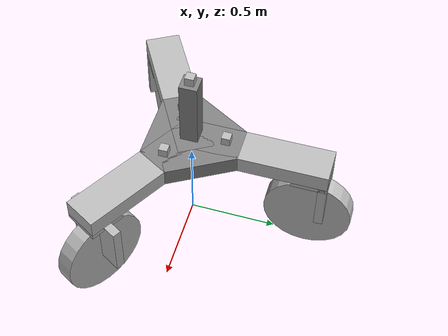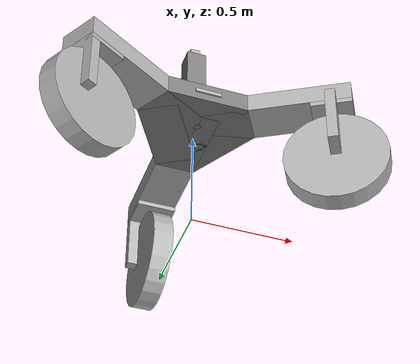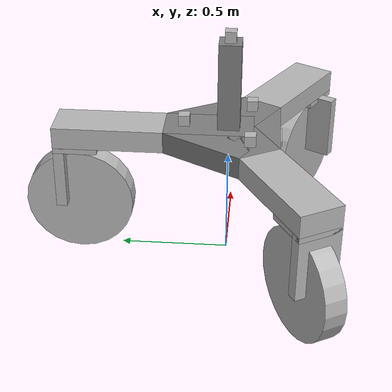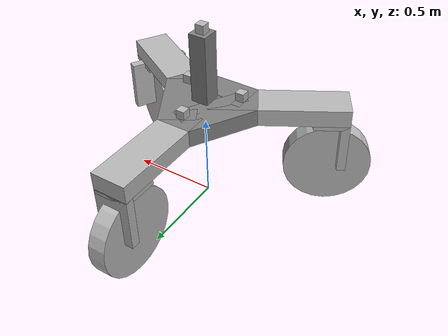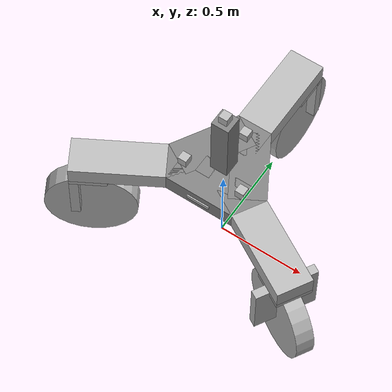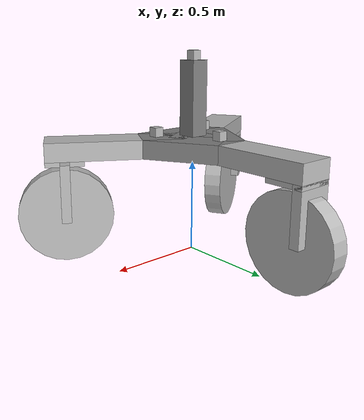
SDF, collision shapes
<?xml version='1.0'?>
<sdf version='1.4'>
  <model name="chimera">
    <plugin name="gps_receiver" filename="libhector_gazebo_ros_gps.so">
      <alwayson>true</alwayson>
      <updaterate>1.0</updaterate>
      <bodyname>base_link</bodyname>
      <topic>/gps/fix</topic>
      <topicName>/gps/fix</topicName>
      <velocitytopicname>/fix_velocity</velocitytopicname>
      <drift>5.0 5.0 5.0</drift>
      <gaussiannoise>0.1 0.1 0.1</gaussiannoise>
      <velocitydrift>0 0 0</velocitydrift>
      <velocitygaussiannoise>0.1 0.1 0.1</velocitygaussiannoise>
      <frameName>world</frameName>
    </plugin>
    <static>false</static>
    <link name = 'chassis'>
      <pose> 0 0 .6 0 0 0 </pose>
      <inertial>
          <inertia>
              <ixx>1e-3</ixx>
              <ixy>0</ixy>
              <ixz>0</ixz>
              <iyy>1e-3</iyy>
              <iyz>0</iyz>
              <izz>1e-3</izz>
          </inertia>
          <mass>0.020</mass>
      </inertial>
      <collision name = 'central-coll'>
        <pose>0 0 .25 0 0 0</pose>
        <geometry>
          <box>
            <size>.1 .1 .4</size>
          </box>
        </geometry>
      </collision>
      <visual name = 'central-vis'>
        <material>
          <ambient>0.5 0.5 0.5 1</ambient>
        </material>
        <pose>0 0 .25 0 0 0</pose>
        <geometry>
          <box>
            <size>.1 .1 .4</size>
          </box>
        </geometry>
      </visual>
      <collision name = 'bow-coll'>
        <pose>0	0.08867529536	0	0	0	1.570796327</pose>
        <geometry>
          <box>
            <size>.4 .2 .1 </size>
          </box>
        </geometry>
      </collision>
      <visual name='bow-vis'>
        <pose>0	0.08867529536	0	0	0	1.570796327</pose>
        <geometry>
          <box>
            <size> .4 .2 .1 </size>
          </box>
        </geometry>
      </visual>
      <collision name = 'port-bow-coll'>
        <pose>-0.11339739	0.06547001365	0	0	0	1.047197551</pose>
        <geometry>
          <box>
            <size>.4 .2 .1 </size>
          </box>
        </geometry>
      </collision>
      <visual name='port-bow-vis'>
        <pose>-0.11339739	0.06547001365	0	0	0	1.047197551</pose>
        <geometry>
          <box>
            <size> .4 .2 .1 </size>
          </box>
        </geometry>
      </visual>
      <collision name = 'port-stern-coll'>
        <pose>-0.07679505847	-0.04433764768	0	0	0	0.5235987756</pose>
        <geometry>
          <box>
            <size>.4 .2 .1 </size>
          </box>
        </geometry>
      </collision>
      <visual name='port-stern-vis'>
        <pose>-0.07679505847	-0.04433764768	0	0	0	0.5235987756</pose>
        <geometry>
          <box>
            <size> .4 .2 .1 </size>
          </box>
        </geometry>
      </visual>
      <collision name = 'stern-coll'>
        <pose>0	-0.1309400273	0	0	0	0</pose>
        <geometry>
          <box>
            <size>.4 .2 .1 </size>
          </box>
        </geometry>
      </collision>
      <visual name='stern-vis'>
        <pose>0	-0.1309400273	0	0	0	0</pose>
        <geometry>
          <box>
            <size> .4 .2 .1 </size>
          </box>
        </geometry>
      </visual>
      <collision name = 'starboard-stern-coll'>
        <pose>0.07679505847	-0.04433764768	0	0	0	2.617993878</pose>
        <geometry>
          <box>
            <size>.4 .2 .1 </size>
          </box>
        </geometry>
      </collision>
      <visual name='starboard-stern-vis'>
        <pose>0.07679505847	-0.04433764768	0	0	0	2.617993878</pose>
        <geometry>
          <box>
            <size> .4 .2 .1 </size>
          </box>
        </geometry>
      </visual>
      <collision name = 'starboard-bow-coll'>
        <pose>0.11339739	0.06547001365	0	0	0	2.094395102</pose>
        <geometry>
          <box>
            <size>.4 .2 .1 </size>
          </box>
        </geometry>
      </collision>
      <visual name='starboard-bow-vis'>
        <pose>0.11339739	0.06547001365	0	0	0	2.094395102</pose>
        <geometry>
          <box>
            <size> .4 .2 .1 </size>
          </box>
        </geometry>
      </visual>
    </link>
    <link name = "imu0-enclosure">
       <pose>0 0 1.075 0 0 0</pose>
       <inertial>
          <inertia>
              <ixx>1e-3</ixx>
              <ixy>0</ixy>
              <ixz>0</ixz>
              <iyy>1e-3</iyy>
              <iyz>0</iyz>
              <izz>1e-3</izz>
          </inertia>
          <mass>0.0003</mass>
       </inertial>
       <collision name = "imu0-coll">
         <geometry>
           <box>
             <size>.05 .05 .05</size>
           </box>
         </geometry>
       </collision>
       <visual name = "imu0-vis">
         <geometry>
           <box>
             <size>.05 .05 .05</size>
           </box>
         </geometry>
       </visual>
      <sensor name="imu_sensor_0" type="imu">
        <pose>0 0 0 0 0 0</pose>
        <always_on>1</always_on>
        <update_rate>100.0</update_rate>
        <visualize>true</visualize>
        <topic>/imu0/data</topic>
        <plugin filename="libgazebo_ros_imu_sensor.so" name="imu0_plugin">
          <topicName>/imu0/data</topicName>
          <bodyName>imu0_link</bodyName>
          <updateRateHZ>100.0</updateRateHZ>
          <gaussianNoise>0.0</gaussianNoise>
          <xyzOffset>0 0 0</xyzOffset>
          <rpyOffset>0 0 0</rpyOffset>
          <frameName>imu0_link</frameName>
        </plugin>
      </sensor>
    </link>
    <link name = "imu1-enclosure">
       <pose>0 0.2 0.675 0 0 0</pose>
       <inertial>
          <inertia>
              <ixx>1e-3</ixx>
              <ixy>0</ixy>
              <ixz>0</ixz>
              <iyy>1e-3</iyy>
              <iyz>0</iyz>
              <izz>1e-3</izz>
          </inertia>
          <mass>0.0003</mass>
       </inertial>
       <collision name = "imu1-coll">
         <geometry>
           <box>
             <size>.05 .05 .05</size>
           </box>
         </geometry>
       </collision>
       <visual name = "imu1-vis">
         <geometry>
           <box>
             <size>.05 .05 .05</size>
           </box>
         </geometry>
       </visual>
      <sensor name="imu_sensor_1" type="imu">
        <pose>0 0 0 0 0 0</pose>
        <always_on>1</always_on>
        <update_rate>100.0</update_rate>
        <visualize>true</visualize>
        <topic>/imu1/data</topic>
        <plugin filename="libgazebo_ros_imu_sensor.so" name="imu1_plugin">
          <topicName>/imu1/data</topicName>
          <bodyName>imu1_link</bodyName>
          <updateRateHZ>100.0</updateRateHZ>
          <gaussianNoise>0.0</gaussianNoise>
          <xyzOffset>0 0 0</xyzOffset>
          <rpyOffset>0 0 0</rpyOffset>
          <frameName>imu1_link</frameName>
        </plugin>
      </sensor>
    </link>
    <link name = "imu2-enclosure">
       <pose>0.1732050808 -0.1 0.675 0 0 0</pose>
       <inertial>
          <inertia>
              <ixx>1e-3</ixx>
              <ixy>0</ixy>
              <ixz>0</ixz>
              <iyy>1e-3</iyy>
              <iyz>0</iyz>
              <izz>1e-3</izz>
          </inertia>
          <mass>0.0003</mass>
       </inertial>
       <collision name = "imu2-coll">
         <geometry>
           <box>
             <size>.05 .05 .05</size>
           </box>
         </geometry>
       </collision>
       <visual name = "imu2-vis">
         <geometry>
           <box>
             <size>.05 .05 .05</size>
           </box>
         </geometry>
       </visual>
      <sensor name="imu_sensor_2" type="imu">
        <pose>0 0 0 0 0 0</pose>
        <always_on>1</always_on>
        <update_rate>100.0</update_rate>
        <visualize>true</visualize>
        <topic>/imu2/data</topic>
        <plugin filename="libgazebo_ros_imu_sensor.so" name="imu2_plugin">
          <topicName>/imu2/data</topicName>
          <bodyName>imu2_link</bodyName>
          <updateRateHZ>100.0</updateRateHZ>
          <gaussianNoise>0.0</gaussianNoise>
          <xyzOffset>0 0 0</xyzOffset>
          <rpyOffset>0 0 0</rpyOffset>
          <frameName>imu2_link</frameName>
        </plugin>
      </sensor>
    </link>
    <link name = "imu3-enclosure">
       <pose>-0.1732050808 -0.1 0.675 0 0 0</pose>
       <inertial>
          <inertia>
              <ixx>1e-3</ixx>
              <ixy>0</ixy>
              <ixz>0</ixz>
              <iyy>1e-3</iyy>
              <iyz>0</iyz>
              <izz>1e-3</izz>
          </inertia>
          <mass>0.0003</mass>
       </inertial>
       <collision name = "imu3-coll">
         <geometry>
           <box>
             <size>.05 .05 .05</size>
           </box>
         </geometry>
       </collision>
       <visual name = "imu3-vis">
         <geometry>
           <box>
             <size>.05 .05 .05</size>
           </box>
         </geometry>
       </visual>
      <sensor name="imu_sensor_3" type="imu">
        <pose>0 0 0 0 0 0</pose>
        <always_on>1</always_on>
        <update_rate>100.0</update_rate>
        <visualize>true</visualize>
        <topic>/imu3/data</topic>
        <plugin filename="libgazebo_ros_imu_sensor.so" name="imu3_plugin">
          <topicName>/imu3/data</topicName>
          <bodyName>imu3_link</bodyName>
          <updateRateHZ>100.0</updateRateHZ>
          <gaussianNoise>0.0</gaussianNoise>
          <xyzOffset>0 0 0</xyzOffset>
          <rpyOffset>0 0 0</rpyOffset>
          <frameName>imu3_link</frameName>
        </plugin>
      </sensor>
    </link>
    <link name = "bow-stabilizer">
      <pose>0 0.5386752954 0.6 0 0 1.570796327</pose>
      <inertial>
          <inertia>
              <ixx>1e-3</ixx>
              <ixy>0</ixy>
              <ixz>0</ixz>
              <iyy>1e-3</iyy>
              <iyz>0</iyz>
              <izz>1e-3</izz>
          </inertia>
          <mass>0.0030</mass>
      </inertial>
      <collision name = "stabilizer-coll">
        <geometry>
          <box>
            <size>0.5 0.2 0.1</size>
          </box>
        </geometry>
      </collision>
      <visual name = "stabilizer-vis">
        <geometry>
          <box>
            <size>0.5 0.2 0.1</size>
          </box>
        </geometry>
      </visual>
    </link>
    <link name = "bow-coupler">
      <pose>0 0.6886752954 0.4 0 0 1.570796327</pose>
      <inertial>
          <inertia>
              <ixx>1e-3</ixx>
              <ixy>0</ixy>
              <ixz>0</ixz>
              <iyy>1e-3</iyy>
              <iyz>0</iyz>
              <izz>1e-3</izz>
          </inertia>
          <mass>0.001</mass>
      </inertial>
      <collision name = "coupler-top-coll">
        <pose>0 0 0.1375 0 0 0</pose>
        <geometry>
          <box>
            <size>0.2 0.2 0.025</size>
          </box>
        </geometry>
      </collision>
      <visual name = "coupler-top-vis">
        <pose>0 0 0.1375 0 0 0</pose>
        <geometry>
          <box>
            <size>0.2 0.2 0.025</size>
          </box>
        </geometry>
      </visual>
      <collision name = "coupler-side-coll">
        <pose>0.075 0 0 0 0 0</pose>
        <geometry>
          <box>
            <size>0.05 0.2 0.3</size>
          </box>
        </geometry>
      </collision>
      <visual name = "coupler-side-vis">
        <pose>0 0.075 0 0 0 0</pose>
        <geometry>
          <box>
            <size>0.2 0.05 0.3</size>
          </box>
        </geometry>
      </visual>
    </link>
    <link name = "bow-wheel">
      <pose>0 0.6886752954 0.25 1.570796327 0 1.570796327</pose>
      <inertial>
          <inertia>
              <ixx>1e-3</ixx>
              <ixy>0</ixy>
              <ixz>0</ixz>
              <iyy>1e-3</iyy>
              <iyz>0</iyz>
              <izz>1e-3</izz>
          </inertia>
          <mass>0.003</mass>
      </inertial>
      <collision name = "wheel-coll">
        <geometry>
          <cylinder>
            <radius>0.25</radius>
            <length>0.1</length>
          </cylinder>
        </geometry>
      </collision>
      <visual name = "wheel-vis">
        <geometry>
          <cylinder>
            <radius>0.25</radius>
            <length>0.1</length>
          </cylinder>
        </geometry>
      </visual>
    </link>
    <link name = "port-stern-stabilizer">
      <pose>-0.4665064902 -0.2693376477 0.6 0 0 3.665191429</pose>
      <inertial>
          <inertia>
              <ixx>1e-3</ixx>
              <ixy>0</ixy>
              <ixz>0</ixz>
              <iyy>1e-3</iyy>
              <iyz>0</iyz>
              <izz>1e-3</izz>
          </inertia>
          <mass>0.003</mass>
      </inertial>
      <collision name = "stabilizer-coll">
        <geometry>
          <box>
            <size>0.5 0.2 0.1</size>
          </box>
        </geometry>
      </collision>
      <visual name = "stabilizer-vis">
        <geometry>
          <box>
            <size>0.5 0.2 0.1</size>
          </box>
        </geometry>
      </visual>
    </link>
    <link name = "port-stern-coupler">
      <pose>-0.5964103007 -0.3443376477 0.4 0 0 3.665191429</pose>
      <inertial>
          <inertia>
              <ixx>1e-3</ixx>
              <ixy>0</ixy>
              <ixz>0</ixz>
              <iyy>1e-3</iyy>
              <iyz>0</iyz>
              <izz>1e-3</izz>
          </inertia>
          <mass>0.001</mass>
      </inertial>
      <collision name = "coupler-top-coll">
        <pose>0 0 0.1375 0 0 0</pose>
        <geometry>
          <box>
            <size>0.2 0.2 0.025</size>
          </box>
        </geometry>
      </collision>
      <visual name = "coupler-top-vis">
        <pose>0 0 0.1375 0 0 0</pose>
        <geometry>
          <box>
            <size>0.2 0.2 0.025</size>
          </box>
        </geometry>
      </visual>
      <collision name = "coupler-side-coll">
        <pose>0.075 0 0 0 0 0</pose>
        <geometry>
          <box>
            <size>0.05 0.2 0.3</size>
          </box>
        </geometry>
      </collision>
      <visual name = "coupler-side-vis">
        <pose>0 0.075 0 0 0 0</pose>
        <geometry>
          <box>
            <size>0.2 0.05 0.3</size>
          </box>
        </geometry>
      </visual>
    </link>
    <link name = "port-stern-wheel">
      <pose>-0.5964103007 -0.3443376477 0.25 1.570796327 0 3.665191429</pose>
      <inertial>
          <inertia>
              <ixx>1e-3</ixx>
              <ixy>0</ixy>
              <ixz>0</ixz>
              <iyy>1e-3</iyy>
              <iyz>0</iyz>
              <izz>1e-3</izz>
          </inertia>
          <mass>0.003</mass>
      </inertial>
      <collision name = "wheel-coll">
        <geometry>
          <cylinder>
            <radius>0.25</radius>
            <length>0.1</length>
          </cylinder>
        </geometry>
      </collision>
      <visual name = "wheel-vis">
        <geometry>
          <cylinder>
            <radius>0.25</radius>
            <length>0.1</length>
          </cylinder>
        </geometry>
      </visual>
    </link>
    <link name = "starboard-stern-stabilizer">
      <pose>0.4665064902 -0.2693376477 0.6 0 0 5.759586532</pose>
      <inertial>
          <inertia>
              <ixx>1e-3</ixx>
              <ixy>0</ixy>
              <ixz>0</ixz>
              <iyy>1e-3</iyy>
              <iyz>0</iyz>
              <izz>1e-3</izz>
          </inertia>
          <mass>0.003</mass>
      </inertial>
      <collision name = "stabilizer-coll">
        <geometry>
          <box>
            <size>0.5 0.2 0.1</size>
          </box>
        </geometry>
      </collision>
      <visual name = "stabilizer-vis">
        <geometry>
          <box>
            <size>0.5 0.2 0.1</size>
          </box>
        </geometry>
      </visual>
    </link>
    <link name = "starboard-stern-coupler">
      <pose>0.5964103007 -0.3443376477 0.4 0 0 5.759586532</pose>
      <inertial>
          <inertia>
              <ixx>1e-3</ixx>
              <ixy>0</ixy>
              <ixz>0</ixz>
              <iyy>1e-3</iyy>
              <iyz>0</iyz>
              <izz>1e-3</izz>
          </inertia>
          <mass>0.003</mass>
      </inertial>
      <collision name = "coupler-top-coll">
        <pose>0 0 0.1375 0 0 0</pose>
        <geometry>
          <box>
            <size>0.2 0.2 0.025</size>
          </box>
        </geometry>
      </collision>
      <visual name = "coupler-top-vis">
        <pose>0 0 0.1375 0 0 0</pose>
        <geometry>
          <box>
            <size>0.2 0.2 0.025</size>
          </box>
        </geometry>
      </visual>
      <collision name = "coupler-side-right-coll">
        <pose>0 0.075 0 0 0 0</pose>
        <geometry>
          <box>
            <size>0.05 0.2 0.3</size>
          </box>
        </geometry>
      </collision>
      <visual name = "coupler-side-right-vis">
        <pose>0 0.075 0 0 0 0</pose>
        <geometry>
          <box>
            <size>0.2 0.05 0.3</size>
          </box>
        </geometry>
      </visual>
      <collision name = "coupler-side-left-coll">
        <pose>0 -0.075 0 0 0 0</pose>
        <geometry>
          <box>
            <size>0.05 0.2 0.3</size>
          </box>
        </geometry>
      </collision>
      <visual name = "coupler-side-left-vis">
        <pose>0 -0.075 0 0 0 0</pose>
        <geometry>
          <box>
            <size>0.2 0.05 0.3</size>
          </box>
        </geometry>
      </visual>
    </link>
    <link name = "starboard-stern-wheel">
      <pose>0.5964103007 -0.3443376477 0.25 1.570796327 0 5.759586532</pose>
      <inertial>
          <inertia>
              <ixx>1e-3</ixx>
              <ixy>0</ixy>
              <ixz>0</ixz>
              <iyy>1e-3</iyy>
              <iyz>0</iyz>
              <izz>1e-3</izz>
          </inertia>
          <mass>0.003</mass>
      </inertial>
      <collision name = "wheel-coll">
        <geometry>
          <cylinder>
            <radius>0.25</radius>
            <length>0.1</length>
          </cylinder>
        </geometry>
      </collision>
      <visual name = "wheel-vis">
        <geometry>
          <cylinder>
            <radius>0.25</radius>
            <length>0.1</length>
          </cylinder>
        </geometry>
      </visual>
    </link>
    <joint name = "imu0_joint" type="fixed">
      <child>imu0-enclosure</child>
      <parent>chassis</parent>
    </joint>
    <joint name = "imu1_joint" type="fixed">
      <child>imu1-enclosure</child>
      <parent>chassis</parent>
    </joint>
    <joint name = "imu2_joint" type="fixed">
      <child>imu2-enclosure</child>
      <parent>chassis</parent>
    </joint>
    <joint name = "imu3_joint" type="fixed">
      <child>imu3-enclosure</child>
      <parent>chassis</parent>
    </joint>
    <joint name = "chassis_bow-stabilizer" type="revolute">
      <pose>-0.25 0 0 1.570796327 0 0</pose>
      <child>bow-stabilizer</child>
      <parent>chassis</parent>
      <axis>
        <limit>
          <lower>-0.4</lower>
          <upper>0.4</upper>
        </limit>
        <xyz>1 0 0</xyz>
      </axis>
    </joint>
    <joint name = "bow-stabilizer_coupler" type="revolute">
      <pose>0 0 0.15 0 0 0</pose>
      <child>bow-coupler</child>
      <parent>bow-stabilizer</parent>
      <axis>
        <limit>
          <lower>-3.141592654</lower>
          <upper>3.141592654</upper>
        </limit>
        <xyz>0 0 1</xyz>
      </axis>
    </joint>
    <joint name = "bow-coupler_wheel" type="revolute">
      <pose>0 0 0 0 0 0</pose>
      <child>bow-wheel</child>
      <parent>bow-coupler</parent>
      <axis>
        <xyz>1 0 0</xyz>
      </axis>
    </joint>
    <joint name = "chassis_port-stern-stabilizer" type="revolute">
      <pose>-0.25 0 0 1.570796327 0 0</pose>
      <child>port-stern-stabilizer</child>
      <parent>chassis</parent>
      <axis>
        <limit>
          <lower>-0.4</lower>
          <upper>0.4</upper>
        </limit>
        <xyz>-0.5 0.8660254038 0</xyz>
      </axis>
    </joint>
    <joint name = "port-stern-stabilizer_coupler" type="revolute">
      <pose>0 0 0.15 0 0 0</pose>
      <child>port-stern-coupler</child>
      <parent>port-stern-stabilizer</parent>
      <axis>
        <limit>
          <lower>-3.141592654</lower>
          <upper>3.141592654</upper>
        </limit>
        <xyz>0 0 1</xyz>
      </axis>
    </joint>
    <joint name = "port-stern-coupler_wheel" type="revolute">
      <pose>0 0 0 0 0 0</pose>
      <child>port-stern-wheel</child>
      <parent>port-stern-coupler</parent>
      <axis>
        <xyz>-0.5 0.8660254038 0</xyz>
      </axis>
    </joint>
    <joint name = "chassis_starboard-stern-stabilizer" type="revolute">
      <pose>-0.25 0 0 1.570796327 0 0</pose>
      <child>starboard-stern-stabilizer</child>
      <parent>chassis</parent>
      <axis>
        <limit>
          <lower>-0.4</lower>
          <upper>0.4</upper>
        </limit>
        <xyz>-0.5 -0.8660254038 0</xyz>
      </axis>
    </joint>
    <joint name = "starboard-stern-stabilizer_coupler" type="revolute">
      <pose>0 0 0.15 0 0 0</pose>
      <child>starboard-stern-coupler</child>
      <parent>starboard-stern-stabilizer</parent>
      <axis>
        <limit>
          <lower>-3.141592654</lower>
          <upper>3.141592654</upper>
        </limit>
        <xyz>0 0 1</xyz>
      </axis>
    </joint>
    <joint name = "starboard-stern-coupler_wheel" type="revolute">
      <pose>0 0 0 0 0 0</pose>
      <child>starboard-stern-wheel</child>
      <parent>starboard-stern-coupler</parent>
      <axis>
        <xyz>-0.5 -0.8660254038 0</xyz>
      </axis>
    </joint>
    <include>
      <uri>model://intel_realsense_r200</uri>
      <pose>0 -0.235 0.6 0 0 -1.570796327</pose>
    </include>
    <joint name="rgbd_joint" type="fixed">
      <child>intel_realsense_r200::link</child>
      <parent>chassis</parent>
    </joint>
  </model>
</sdf>

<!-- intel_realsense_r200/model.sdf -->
<sdf version="1.6">
  <model name="intel_realsense_r200">
    <pose>0 0 0.01 0 0 0</pose>
    <link name="link">
      <inertial>
        <mass>0.2</mass>
        <inertia>
          <ixx>0.00014395</ixx>
          <ixy>0</ixy>
          <ixz>0</ixz>
          <iyy>0.00000384</iyy>
          <iyz>0</iyz>
          <izz>0.00014136</izz>
        </inertia>
      </inertial>
      <collision name="collision">
        <geometry>
          <box>
            <size>0.008 0.13 0.02</size>
          </box>
        </geometry>
        <surface>
          <contact>
            <ode>
              <max_vel>0.1</max_vel>
              <min_depth>0.001</min_depth>
            </ode>
          </contact>
          <friction>
            <ode>
              <mu>0.4</mu>
              <mu2>0.4</mu2>
            </ode>
          </friction>
        </surface>
      </collision>
      <visual name="visual">
        <geometry>
          <mesh>
            <uri>model://../model_source/models/intel_realsense_r200/meshes/realsense_r200.dae</uri>
          </mesh>
        </geometry>
      </visual>
      <sensor name="camera" type="depth">
        <pose>0.001 -0.045 0.003 0 0 0</pose>
        <update_rate>60</update_rate>
        <camera>
          <horizontal_fov>0.976899239</horizontal_fov>
          <image>
            <width>480</width>
            <height>360</height>
            <format>R8G8B8</format>
          </image>
          <clip>
            <near>0.5</near>
            <far>10</far>
          </clip>
        </camera>
      </sensor>
    </link>
  </model>
</sdf>
